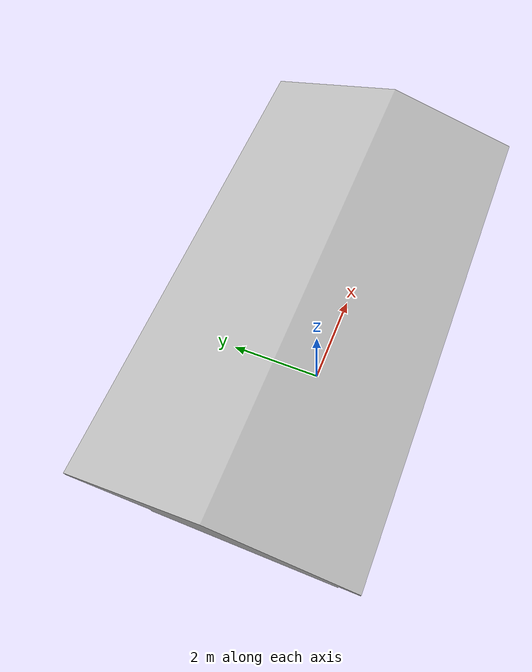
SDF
<?xml version="1.0" ?>
<sdf version="1.6">
  <model name="fire_station">
    <static>true</static>
    <link name="link">
      <collision name="main">
        <pose>0 -0.05 2 0 0 0</pose>
        <geometry>
          <box>
            <size>8 3.8 4</size> <!-- Çarpışma kutusunu da orantılı küçülttük -->
          </box>
        </geometry>
      </collision>
      <visual name="visual">
        <geometry>
          <mesh>
            <scale>0.4 0.4 0.4</scale> <!-- Modele ölçek eklendi -->
            <uri>model://fire_station/meshes/fire_station.dae</uri>
          </mesh>
        </geometry>
      </visual>
    </link>
  </model>
</sdf>
